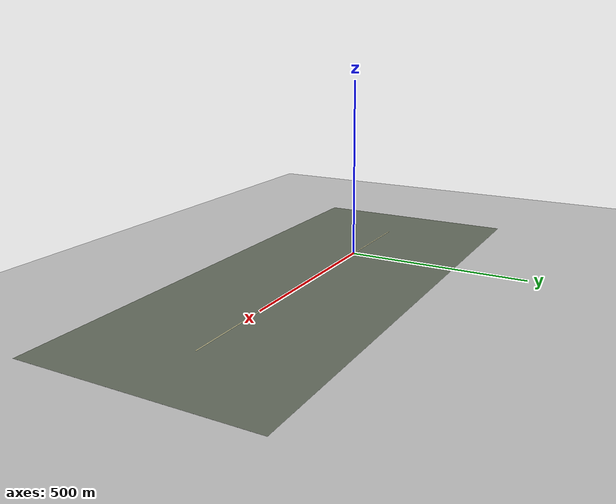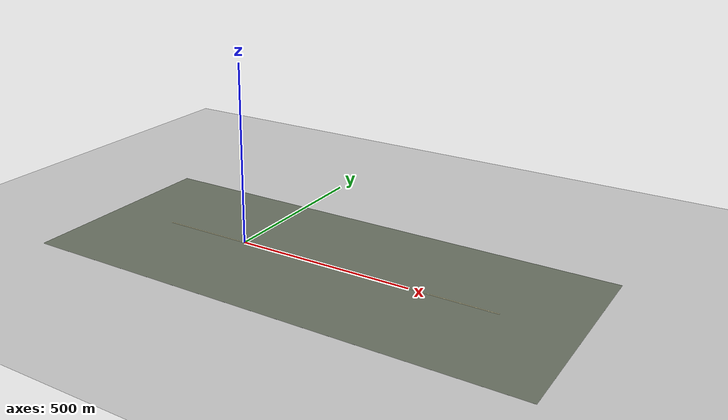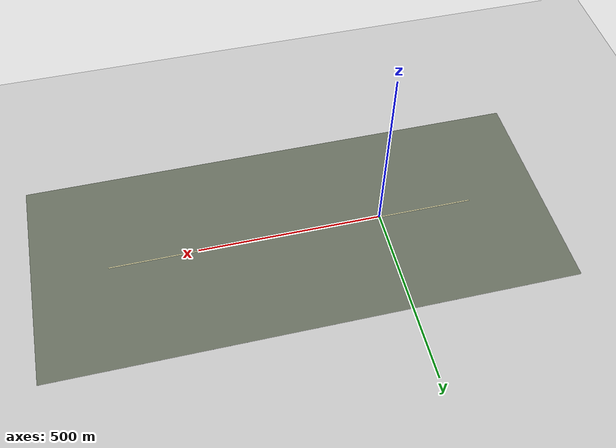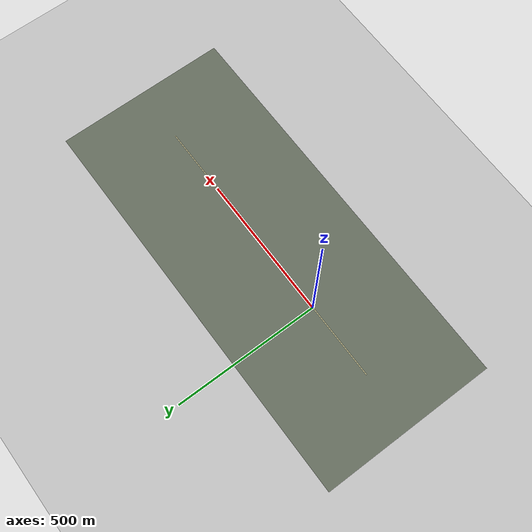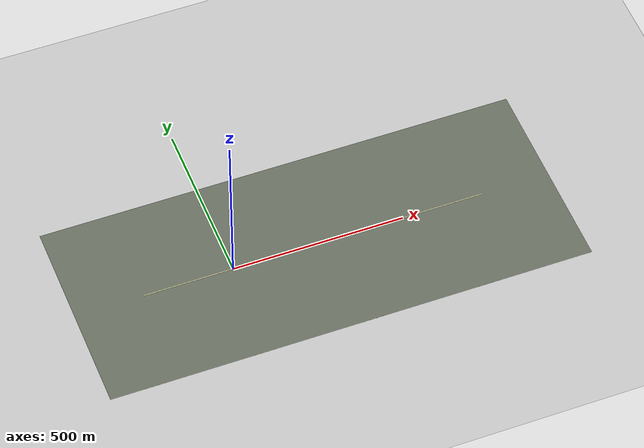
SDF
<?xml version="1.0" ?>
<sdf version="1.5">
  <world name="default">
    <!-- A global light source -->
    <include>
      <uri>model://sun</uri>
    </include>
    <!-- A ground plane -->
    <include>
      <uri>model://ground_plane</uri>
    </include>
    <include>
      <uri>model://asphalt_plane</uri>
    </include>
    <physics name='default_physics' default='0' type='ode'>
      <gravity>0 0 -9.8066</gravity>
      <ode>
        <solver>
          <type>quick</type>
          <iters>10</iters>
          <sor>1.3</sor>
          <use_dynamic_moi_rescaling>0</use_dynamic_moi_rescaling>
        </solver>
        <constraints>
          <cfm>0</cfm>
          <erp>0.2</erp>
          <contact_max_correcting_vel>100</contact_max_correcting_vel>
          <contact_surface_layer>0.001</contact_surface_layer>
        </constraints>
      </ode>
      <max_step_size>0.004</max_step_size>
      <real_time_factor>1</real_time_factor>
      <real_time_update_rate>250</real_time_update_rate>
      <magnetic_field>6.0e-6 2.3e-5 -4.2e-5</magnetic_field>
    </physics>

    <plugin name="gazebo_ros_state" filename="libgazebo_ros_state.so">
      <ros>
        <namespace>/gazebo</namespace>
      </ros>
      <update_rate>50.0</update_rate>
    </plugin>

    <model name="uavx_record_apron">
      <static>true</static>
      <pose>240 0 0.02 0 0 0</pose>
      <link name="link">
        <visual name="apron">
          <geometry><box><size>1400 600 0.04</size></box></geometry>
          <material>
            <ambient>0.32 0.34 0.30 1</ambient>
            <diffuse>0.42 0.45 0.39 1</diffuse>
          </material>
        </visual>
      </link>
    </model>

    <model name="uavx_record_centreline">
      <static>true</static>
      <pose>240 0 0.05 0 0 0</pose>
      <link name="link">
        <visual name="line">
          <geometry><box><size>1000 3 0.02</size></box></geometry>
          <material>
            <ambient>0.75 0.72 0.55 1</ambient>
            <diffuse>0.88 0.85 0.65 1</diffuse>
          </material>
        </visual>
      </link>
    </model>

    <model name="uavx_record_camera">
      <static>true</static>
      <pose>-120 0 50 0 0.035 0</pose>
      <link name="link">
        <sensor name="view" type="camera">
          <update_rate>10.0</update_rate>
          <always_on>1</always_on>
          <camera>
            <horizontal_fov>0.7</horizontal_fov>
            <image>
              <width>960</width>
              <height>540</height>
              <format>R8G8B8</format>
            </image>
            <clip>
              <near>1.0</near>
              <far>3000</far>
            </clip>
          </camera>
          <plugin name="uavx_camera_plugin" filename="libgazebo_ros_camera.so">
            <ros>
              <namespace>/uavx_record</namespace>
            </ros>
            <camera_name>view</camera_name>
            <frame_name>uavx_record_camera</frame_name>
          </plugin>
        </sensor>
      </link>
    </model>
  </world>
</sdf>
